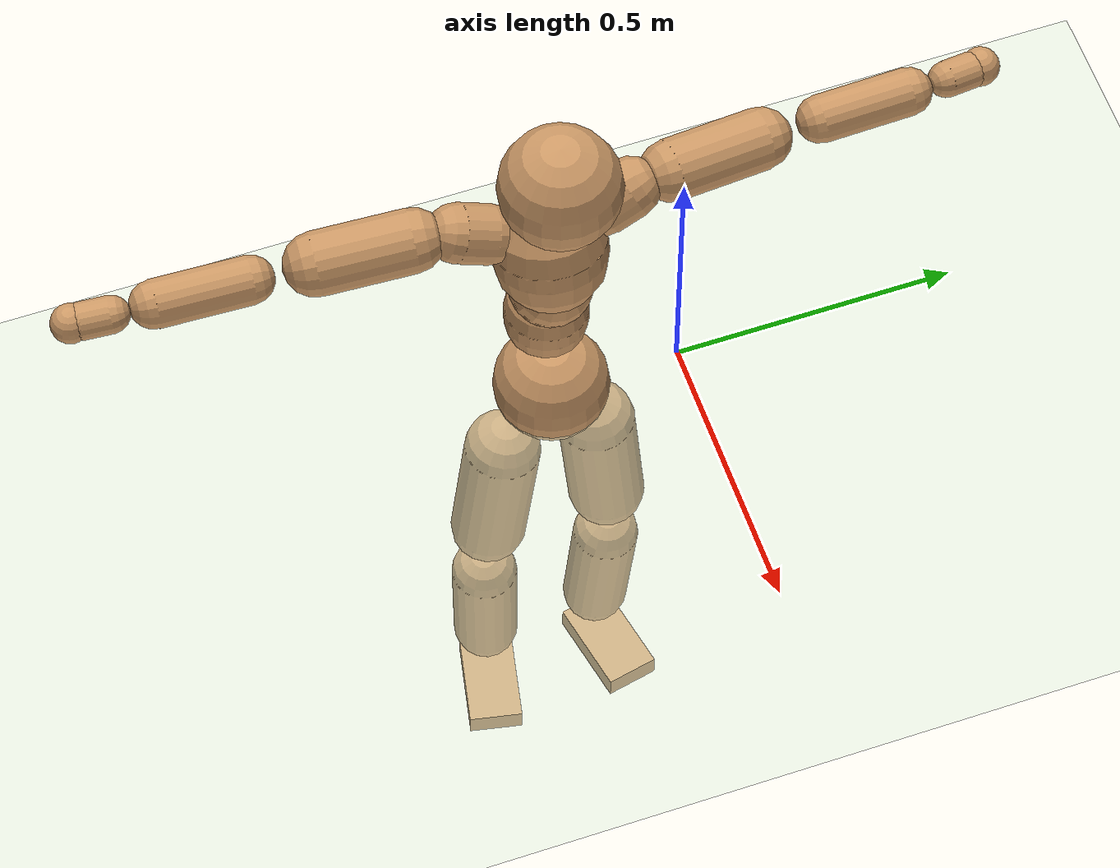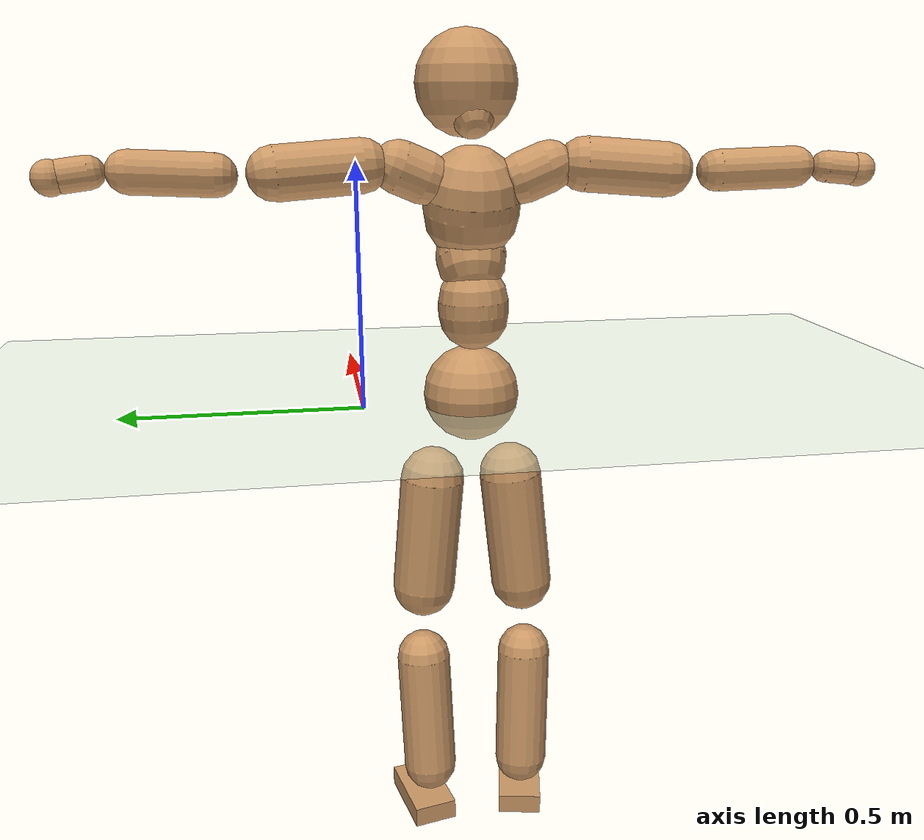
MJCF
<mujoco model="humanoid">
  <compiler coordinate="local" angle="radian"/>
  <default>
    <joint damping="0.0" armature="0.01" stiffness="0.0" limited="true"/>
    <geom conaffinity="1" condim="3" contype="7" margin="0.001" rgba="0.8 0.6 .4 1"/>
  </default>
  <asset>
    <texture type="skybox" builtin="gradient" rgb1=".4 .5 .6" rgb2="0 0 0" width="100" height="100"/>
    <texture builtin="flat" height="1278" mark="cross" markrgb="1 1 1" name="texgeom" random="0.01" rgb1="0.8 0.6 0.4" rgb2="0.8 0.6 0.4" type="cube" width="127"/>
    <texture builtin="checker" height="100" name="texplane" rgb1="0 0 0" rgb2="0.8 0.8 0.8" type="2d" width="100"/>
    <material name="MatPlane" reflectance="0.5" shininess="1" specular="1" texrepeat="60 60" texture="texplane"/>
    <material name="geom" texture="texgeom" texuniform="true"/>
  </asset>
  <worldbody>
    <light cutoff="100" diffuse="1 1 1" dir="-0 0 -1.3" directional="true" exponent="1" pos="0 0 1.3" specular=".1 .1 .1"/>
    <geom conaffinity="1" condim="3" name="floor" pos="0 0 0" rgba="0.8 0.9 0.8 1" size="100 100 .2" type="plane" material="MatPlane"/>
    <body name="Pelvis" pos="0.0002 -0.228 0.0242">
      <freejoint name="Pelvis"/>
      <geom type="sphere" contype="1" conaffinity="1" density="500" size="0.1010" pos="0.0000 0.0000 0.0000" name="Pelvis"/>
      <body name="L_Hip" pos="-0.0129 0.0796 -0.0996">
        <joint name="L_Hip_x" type="hinge" pos="0 0 0" axis="1 0 0" stiffness="800" damping="80" armature="0.02" range="-180.0000 180.0000"/>
        <joint name="L_Hip_y" type="hinge" pos="0 0 0" axis="0 1 0" stiffness="800" damping="80" armature="0.02" range="-180.0000 180.0000"/>
        <joint name="L_Hip_z" type="hinge" pos="0 0 0" axis="0 0 1" stiffness="800" damping="80" armature="0.02" range="-180.0000 180.0000"/>
        <geom type="capsule" contype="1" conaffinity="1" density="500" fromto="-0.0009 0.0076 -0.0845 -0.0035 0.0305 -0.3379" size="0.0683" name="L_Hip"/>
        <body name="L_Knee" pos="-0.0043 0.0382 -0.4224">
          <joint name="L_Knee_x" type="hinge" pos="0 0 0" axis="1 0 0" stiffness="800" damping="80" armature="0.02" range="-180.0000 180.0000"/>
          <joint name="L_Knee_y" type="hinge" pos="0 0 0" axis="0 1 0" stiffness="800" damping="80" armature="0.02" range="-180.0000 180.0000"/>
          <joint name="L_Knee_z" type="hinge" pos="0 0 0" axis="0 0 1" stiffness="800" damping="80" armature="0.02" range="-180.0000 180.0000"/>
          <geom type="capsule" contype="1" conaffinity="1" density="500" fromto="-0.0104 -0.0025 -0.0889 -0.0415 -0.0102 -0.3556" size="0.059" name="L_Knee"/>
          <body name="L_Ankle" pos="-0.0519 -0.0127 -0.4445">
            <joint name="L_Ankle_x" type="hinge" pos="0 0 0" axis="1 0 0" stiffness="800" damping="80" armature="0.02" range="-180.0000 180.0000"/>
            <joint name="L_Ankle_y" type="hinge" pos="0 0 0" axis="0 1 0" stiffness="800" damping="80" armature="0.02" range="-180.0000 180.0000"/>
            <joint name="L_Ankle_z" type="hinge" pos="0 0 0" axis="0 0 1" stiffness="800" damping="80" armature="0.02" range="-180.0000 180.0000"/>
            <geom type="box" contype="1" conaffinity="1" density="500" pos="0.0624 0.0130 -0.0309" size="0.0876 0.0482 0.0228" quat="0.9948 0.0000 0.0000 0.1021" name="L_Ankle"/>
            <body name="L_Toe" pos="0.1249 0.0259 -0.0618">
              <joint name="L_Toe_x" type="hinge" pos="0 0 0" axis="1 0 0" stiffness="500" damping="50" armature="0.02" range="-180.0000 180.0000"/>
              <joint name="L_Toe_y" type="hinge" pos="0 0 0" axis="0 1 0" stiffness="500" damping="50" armature="0.02" range="-180.0000 180.0000"/>
              <joint name="L_Toe_z" type="hinge" pos="0 0 0" axis="0 0 1" stiffness="500" damping="50" armature="0.02" range="-180.0000 180.0000"/>
              <geom type="box" contype="1" conaffinity="1" density="500" pos="0.0000 0.0000 0.0314" size="0.0009 0.0024 0.0012" quat="0.9941 0.0000 0.0000 0.1080" name="L_Toe"/>
            </body>
          </body>
        </body>
      </body>
      <body name="R_Hip" pos="-0.0087 -0.0762 -0.0983">
        <joint name="R_Hip_x" type="hinge" pos="0 0 0" axis="1 0 0" stiffness="800" damping="80" armature="0.02" range="-180.0000 180.0000"/>
        <joint name="R_Hip_y" type="hinge" pos="0 0 0" axis="0 1 0" stiffness="800" damping="80" armature="0.02" range="-180.0000 180.0000"/>
        <joint name="R_Hip_z" type="hinge" pos="0 0 0" axis="0 0 1" stiffness="800" damping="80" armature="0.02" range="-180.0000 180.0000"/>
        <geom type="capsule" contype="1" conaffinity="1" density="500" fromto="-0.0016 -0.0091 -0.0862 -0.0064 -0.0365 -0.3447" size="0.0673" name="R_Hip"/>
        <body name="R_Knee" pos="-0.008 -0.0456 -0.4309">
          <joint name="R_Knee_x" type="hinge" pos="0 0 0" axis="1 0 0" stiffness="800" damping="80" armature="0.02" range="-180.0000 180.0000"/>
          <joint name="R_Knee_y" type="hinge" pos="0 0 0" axis="0 1 0" stiffness="800" damping="80" armature="0.02" range="-180.0000 180.0000"/>
          <joint name="R_Knee_z" type="hinge" pos="0 0 0" axis="0 0 1" stiffness="800" damping="80" armature="0.02" range="-180.0000 180.0000"/>
          <geom type="capsule" contype="1" conaffinity="1" density="500" fromto="-0.0099 0.0033 -0.0890 -0.0395 0.0131 -0.3558" size="0.0591" name="R_Knee"/>
          <body name="R_Ankle" pos="-0.0494 0.0163 -0.4448">
            <joint name="R_Ankle_x" type="hinge" pos="0 0 0" axis="1 0 0" stiffness="800" damping="80" armature="0.02" range="-180.0000 180.0000"/>
            <joint name="R_Ankle_y" type="hinge" pos="0 0 0" axis="0 1 0" stiffness="800" damping="80" armature="0.02" range="-180.0000 180.0000"/>
            <joint name="R_Ankle_z" type="hinge" pos="0 0 0" axis="0 0 1" stiffness="800" damping="80" armature="0.02" range="-180.0000 180.0000"/>
            <geom type="box" contype="1" conaffinity="1" density="500" pos="0.0644 -0.0135 -0.0269" size="0.0895 0.0488 0.0225" quat="0.9947 0.0000 0.0000 -0.1027" name="R_Ankle"/>
            <body name="R_Toe" pos="0.1289 -0.0269 -0.0539">
              <joint name="R_Toe_x" type="hinge" pos="0 0 0" axis="1 0 0" stiffness="500" damping="50" armature="0.02" range="-180.0000 180.0000"/>
              <joint name="R_Toe_y" type="hinge" pos="0 0 0" axis="0 1 0" stiffness="500" damping="50" armature="0.02" range="-180.0000 180.0000"/>
              <joint name="R_Toe_z" type="hinge" pos="0 0 0" axis="0 0 1" stiffness="500" damping="50" armature="0.02" range="-180.0000 180.0000"/>
              <geom type="box" contype="1" conaffinity="1" density="500" pos="0.0000 0.0000 0.0295" size="0.0009 0.0024 0.0013" quat="0.9956 0.0000 0.0000 -0.0939" name="R_Toe"/>
            </body>
          </body>
        </body>
      </body>
      <body name="Torso" pos="-0.0224 -0.0032 0.1145">
        <joint name="Torso_x" type="hinge" pos="0 0 0" axis="1 0 0" stiffness="1000" damping="100" armature="0.02" range="-180.0000 180.0000"/>
        <joint name="Torso_y" type="hinge" pos="0 0 0" axis="0 1 0" stiffness="1000" damping="100" armature="0.02" range="-180.0000 180.0000"/>
        <joint name="Torso_z" type="hinge" pos="0 0 0" axis="0 0 1" stiffness="1000" damping="100" armature="0.02" range="-180.0000 180.0000"/>
        <geom type="capsule" contype="1" conaffinity="1" density="500" fromto="-0.0018 0.0027 0.0872 -0.0012 0.0018 0.0582" size="0.0723" name="Torso"/>
        <body name="Spine" pos="-0.003 0.0044 0.1454">
          <joint name="Spine_x" type="hinge" pos="0 0 0" axis="1 0 0" stiffness="1000" damping="100" armature="0.02" range="-180.0000 180.0000"/>
          <joint name="Spine_y" type="hinge" pos="0 0 0" axis="0 1 0" stiffness="1000" damping="100" armature="0.02" range="-180.0000 180.0000"/>
          <joint name="Spine_z" type="hinge" pos="0 0 0" axis="0 0 1" stiffness="1000" damping="100" armature="0.02" range="-180.0000 180.0000"/>
          <geom type="capsule" contype="1" conaffinity="1" density="500" fromto="0.0190 0.0004 0.0327 0.0126 0.0003 0.0218" size="0.0719" name="Spine"/>
          <body name="Chest" pos="0.0316 0.0007 0.0545">
            <joint name="Chest_x" type="hinge" pos="0 0 0" axis="1 0 0" stiffness="1000" damping="100" armature="0.02" range="-180.0000 180.0000"/>
            <joint name="Chest_y" type="hinge" pos="0 0 0" axis="0 1 0" stiffness="1000" damping="100" armature="0.02" range="-180.0000 180.0000"/>
            <joint name="Chest_z" type="hinge" pos="0 0 0" axis="0 0 1" stiffness="1000" damping="100" armature="0.02" range="-180.0000 180.0000"/>
            <geom type="capsule" contype="1" conaffinity="1" density="500" fromto="-0.0233 -0.0009 0.0941 -0.0155 -0.0006 0.0627" size="0.0973" name="Chest"/>
            <body name="Neck" pos="-0.0397 -0.0029 0.2274">
              <joint name="Neck_x" type="hinge" pos="0 0 0" axis="1 0 0" stiffness="500" damping="50" armature="0.02" range="-180.0000 180.0000"/>
              <joint name="Neck_y" type="hinge" pos="0 0 0" axis="0 1 0" stiffness="500" damping="50" armature="0.02" range="-180.0000 180.0000"/>
              <joint name="Neck_z" type="hinge" pos="0 0 0" axis="0 0 1" stiffness="500" damping="50" armature="0.02" range="-180.0000 180.0000"/>
              <geom type="capsule" contype="1" conaffinity="1" density="500" fromto="0.0122 0.0011 0.0156 0.0490 0.0045 0.0623" size="0.0423" name="Neck"/>
              <body name="Head" pos="0.0612 0.0056 0.0778">
                <joint name="Head_x" type="hinge" pos="0 0 0" axis="1 0 0" stiffness="500" damping="50" armature="0.02" range="-180.0000 180.0000"/>
                <joint name="Head_y" type="hinge" pos="0 0 0" axis="0 1 0" stiffness="500" damping="50" armature="0.02" range="-180.0000 180.0000"/>
                <joint name="Head_z" type="hinge" pos="0 0 0" axis="0 0 1" stiffness="500" damping="50" armature="0.02" range="-180.0000 180.0000"/>
                <geom type="sphere" contype="1" conaffinity="1" density="500" size="0.1028" pos="0.0000 0.0000 0.0000" name="Head"/>
              </body>
            </body>
            <body name="L_Thorax" pos="-0.0349 0.0775 0.1227">
              <joint name="L_Thorax_x" type="hinge" pos="0 0 0" axis="1 0 0" stiffness="500" damping="50" armature="0.02" range="-180.0000 180.0000"/>
              <joint name="L_Thorax_y" type="hinge" pos="0 0 0" axis="0 1 0" stiffness="500" damping="50" armature="0.02" range="-180.0000 180.0000"/>
              <joint name="L_Thorax_z" type="hinge" pos="0 0 0" axis="0 0 1" stiffness="500" damping="50" armature="0.02" range="-180.0000 180.0000"/>
              <geom type="capsule" contype="1" conaffinity="1" density="500" fromto="-0.0015 0.0170 0.0072 -0.0061 0.0679 0.0287" size="0.052" name="L_Thorax"/>
              <body name="L_Shoulder" pos="-0.0077 0.0849 0.0359">
                <joint name="L_Shoulder_x" type="hinge" pos="0 0 0" axis="1 0 0" stiffness="500" damping="50" armature="0.02" range="-720.0000 720.0000"/>
                <joint name="L_Shoulder_y" type="hinge" pos="0 0 0" axis="0 1 0" stiffness="500" damping="50" armature="0.02" range="-720.0000 720.0000"/>
                <joint name="L_Shoulder_z" type="hinge" pos="0 0 0" axis="0 0 1" stiffness="500" damping="50" armature="0.02" range="-720.0000 720.0000"/>
                <geom type="capsule" contype="1" conaffinity="1" density="500" fromto="-0.0062 0.0548 -0.0038 -0.0249 0.2192 -0.0154" size="0.0527" name="L_Shoulder"/>
                <body name="L_Elbow" pos="-0.0312 0.274 -0.0192">
                  <joint name="L_Elbow_x" type="hinge" pos="0 0 0" axis="1 0 0" stiffness="500" damping="50" armature="0.02" range="-720.0000 720.0000"/>
                  <joint name="L_Elbow_y" type="hinge" pos="0 0 0" axis="0 1 0" stiffness="500" damping="50" armature="0.02" range="-720.0000 720.0000"/>
                  <joint name="L_Elbow_z" type="hinge" pos="0 0 0" axis="0 0 1" stiffness="500" damping="50" armature="0.02" range="-720.0000 720.0000"/>
                  <geom type="capsule" contype="1" conaffinity="1" density="500" fromto="0.0001 0.0517 0.0023 0.0003 0.2067 0.0093" size="0.0407" name="L_Elbow"/>
                  <body name="L_Wrist" pos="0.0003 0.2584 0.0116">
                    <joint name="L_Wrist_x" type="hinge" pos="0 0 0" axis="1 0 0" stiffness="300" damping="30" armature="0.02" range="-180.0000 180.0000"/>
                    <joint name="L_Wrist_y" type="hinge" pos="0 0 0" axis="0 1 0" stiffness="300" damping="30" armature="0.02" range="-180.0000 180.0000"/>
                    <joint name="L_Wrist_z" type="hinge" pos="0 0 0" axis="0 0 1" stiffness="300" damping="30" armature="0.02" range="-180.0000 180.0000"/>
                    <geom type="capsule" contype="1" conaffinity="1" density="500" fromto="-0.0027 0.0164 -0.0020 -0.0109 0.0655 -0.0082" size="0.0309" name="L_Wrist"/>
                    <body name="L_Hand" pos="-0.0137 0.0819 -0.0102">
                      <joint name="L_Hand_x" type="hinge" pos="0 0 0" axis="1 0 0" stiffness="300" damping="30" armature="0.02" range="-180.0000 180.0000"/>
                      <joint name="L_Hand_y" type="hinge" pos="0 0 0" axis="0 1 0" stiffness="300" damping="30" armature="0.02" range="-180.0000 180.0000"/>
                      <joint name="L_Hand_z" type="hinge" pos="0 0 0" axis="0 0 1" stiffness="300" damping="30" armature="0.02" range="-180.0000 180.0000"/>
                      <geom type="sphere" contype="1" conaffinity="1" density="500" size="0.0330" pos="0.0000 0.0000 0.0000" name="L_Hand"/>
                    </body>
                  </body>
                </body>
              </body>
            </body>
            <body name="R_Thorax" pos="-0.0417 -0.0792 0.1204">
              <joint name="R_Thorax_x" type="hinge" pos="0 0 0" axis="1 0 0" stiffness="500" damping="50" armature="0.02" range="-180.0000 180.0000"/>
              <joint name="R_Thorax_y" type="hinge" pos="0 0 0" axis="0 1 0" stiffness="500" damping="50" armature="0.02" range="-180.0000 180.0000"/>
              <joint name="R_Thorax_z" type="hinge" pos="0 0 0" axis="0 0 1" stiffness="500" damping="50" armature="0.02" range="-180.0000 180.0000"/>
              <geom type="capsule" contype="1" conaffinity="1" density="500" fromto="-0.0017 -0.0178 0.0076 -0.0067 -0.0712 0.0302" size="0.0507" name="R_Thorax"/>
              <body name="R_Shoulder" pos="-0.0084 -0.089 0.0378">
                <joint name="R_Shoulder_x" type="hinge" pos="0 0 0" axis="1 0 0" stiffness="500" damping="50" armature="0.02" range="-720.0000 720.0000"/>
                <joint name="R_Shoulder_y" type="hinge" pos="0 0 0" axis="0 1 0" stiffness="500" damping="50" armature="0.02" range="-720.0000 720.0000"/>
                <joint name="R_Shoulder_z" type="hinge" pos="0 0 0" axis="0 0 1" stiffness="500" damping="50" armature="0.02" range="-720.0000 720.0000"/>
                <geom type="capsule" contype="1" conaffinity="1" density="500" fromto="-0.0052 -0.0537 -0.0039 -0.0207 -0.2148 -0.0155" size="0.0541" name="R_Shoulder"/>
                <body name="R_Elbow" pos="-0.0259 -0.2685 -0.0193">
                  <joint name="R_Elbow_x" type="hinge" pos="0 0 0" axis="1 0 0" stiffness="500" damping="50" armature="0.02" range="-720.0000 720.0000"/>
                  <joint name="R_Elbow_y" type="hinge" pos="0 0 0" axis="0 1 0" stiffness="500" damping="50" armature="0.02" range="-720.0000 720.0000"/>
                  <joint name="R_Elbow_z" type="hinge" pos="0 0 0" axis="0 0 1" stiffness="500" damping="50" armature="0.02" range="-720.0000 720.0000"/>
                  <geom type="capsule" contype="1" conaffinity="1" density="500" fromto="-0.0009 -0.0535 0.0019 -0.0034 -0.2140 0.0074" size="0.041" name="R_Elbow"/>
                  <body name="R_Wrist" pos="-0.0043 -0.2674 0.0093">
                    <joint name="R_Wrist_x" type="hinge" pos="0 0 0" axis="1 0 0" stiffness="300" damping="30" armature="0.02" range="-180.0000 180.0000"/>
                    <joint name="R_Wrist_y" type="hinge" pos="0 0 0" axis="0 1 0" stiffness="300" damping="30" armature="0.02" range="-180.0000 180.0000"/>
                    <joint name="R_Wrist_z" type="hinge" pos="0 0 0" axis="0 0 1" stiffness="300" damping="30" armature="0.02" range="-180.0000 180.0000"/>
                    <geom type="capsule" contype="1" conaffinity="1" density="500" fromto="-0.0021 -0.0165 -0.0015 -0.0086 -0.0661 -0.0060" size="0.0316" name="R_Wrist"/>
                    <body name="R_Hand" pos="-0.0107 -0.0826 -0.0075">
                      <joint name="R_Hand_x" type="hinge" pos="0 0 0" axis="1 0 0" stiffness="300" damping="30" armature="0.02" range="-180.0000 180.0000"/>
                      <joint name="R_Hand_y" type="hinge" pos="0 0 0" axis="0 1 0" stiffness="300" damping="30" armature="0.02" range="-180.0000 180.0000"/>
                      <joint name="R_Hand_z" type="hinge" pos="0 0 0" axis="0 0 1" stiffness="300" damping="30" armature="0.02" range="-180.0000 180.0000"/>
                      <geom type="sphere" contype="1" conaffinity="1" density="500" size="0.0332" pos="0.0000 0.0000 0.0000" name="R_Hand"/>
                    </body>
                  </body>
                </body>
              </body>
            </body>
          </body>
        </body>
      </body>
    </body>
  </worldbody>
  <actuator>
    <motor name="L_Hip_x" joint="L_Hip_x" gear="500"/>
    <motor name="L_Hip_y" joint="L_Hip_y" gear="500"/>
    <motor name="L_Hip_z" joint="L_Hip_z" gear="500"/>
    <motor name="L_Knee_x" joint="L_Knee_x" gear="500"/>
    <motor name="L_Knee_y" joint="L_Knee_y" gear="500"/>
    <motor name="L_Knee_z" joint="L_Knee_z" gear="500"/>
    <motor name="L_Ankle_x" joint="L_Ankle_x" gear="500"/>
    <motor name="L_Ankle_y" joint="L_Ankle_y" gear="500"/>
    <motor name="L_Ankle_z" joint="L_Ankle_z" gear="500"/>
    <motor name="L_Toe_x" joint="L_Toe_x" gear="500"/>
    <motor name="L_Toe_y" joint="L_Toe_y" gear="500"/>
    <motor name="L_Toe_z" joint="L_Toe_z" gear="500"/>
    <motor name="R_Hip_x" joint="R_Hip_x" gear="500"/>
    <motor name="R_Hip_y" joint="R_Hip_y" gear="500"/>
    <motor name="R_Hip_z" joint="R_Hip_z" gear="500"/>
    <motor name="R_Knee_x" joint="R_Knee_x" gear="500"/>
    <motor name="R_Knee_y" joint="R_Knee_y" gear="500"/>
    <motor name="R_Knee_z" joint="R_Knee_z" gear="500"/>
    <motor name="R_Ankle_x" joint="R_Ankle_x" gear="500"/>
    <motor name="R_Ankle_y" joint="R_Ankle_y" gear="500"/>
    <motor name="R_Ankle_z" joint="R_Ankle_z" gear="500"/>
    <motor name="R_Toe_x" joint="R_Toe_x" gear="500"/>
    <motor name="R_Toe_y" joint="R_Toe_y" gear="500"/>
    <motor name="R_Toe_z" joint="R_Toe_z" gear="500"/>
    <motor name="Torso_x" joint="Torso_x" gear="500"/>
    <motor name="Torso_y" joint="Torso_y" gear="500"/>
    <motor name="Torso_z" joint="Torso_z" gear="500"/>
    <motor name="Spine_x" joint="Spine_x" gear="500"/>
    <motor name="Spine_y" joint="Spine_y" gear="500"/>
    <motor name="Spine_z" joint="Spine_z" gear="500"/>
    <motor name="Chest_x" joint="Chest_x" gear="500"/>
    <motor name="Chest_y" joint="Chest_y" gear="500"/>
    <motor name="Chest_z" joint="Chest_z" gear="500"/>
    <motor name="Neck_x" joint="Neck_x" gear="500"/>
    <motor name="Neck_y" joint="Neck_y" gear="500"/>
    <motor name="Neck_z" joint="Neck_z" gear="500"/>
    <motor name="Head_x" joint="Head_x" gear="500"/>
    <motor name="Head_y" joint="Head_y" gear="500"/>
    <motor name="Head_z" joint="Head_z" gear="500"/>
    <motor name="L_Thorax_x" joint="L_Thorax_x" gear="500"/>
    <motor name="L_Thorax_y" joint="L_Thorax_y" gear="500"/>
    <motor name="L_Thorax_z" joint="L_Thorax_z" gear="500"/>
    <motor name="L_Shoulder_x" joint="L_Shoulder_x" gear="500"/>
    <motor name="L_Shoulder_y" joint="L_Shoulder_y" gear="500"/>
    <motor name="L_Shoulder_z" joint="L_Shoulder_z" gear="500"/>
    <motor name="L_Elbow_x" joint="L_Elbow_x" gear="500"/>
    <motor name="L_Elbow_y" joint="L_Elbow_y" gear="500"/>
    <motor name="L_Elbow_z" joint="L_Elbow_z" gear="500"/>
    <motor name="L_Wrist_x" joint="L_Wrist_x" gear="500"/>
    <motor name="L_Wrist_y" joint="L_Wrist_y" gear="500"/>
    <motor name="L_Wrist_z" joint="L_Wrist_z" gear="500"/>
    <motor name="L_Hand_x" joint="L_Hand_x" gear="500"/>
    <motor name="L_Hand_y" joint="L_Hand_y" gear="500"/>
    <motor name="L_Hand_z" joint="L_Hand_z" gear="500"/>
    <motor name="R_Thorax_x" joint="R_Thorax_x" gear="500"/>
    <motor name="R_Thorax_y" joint="R_Thorax_y" gear="500"/>
    <motor name="R_Thorax_z" joint="R_Thorax_z" gear="500"/>
    <motor name="R_Shoulder_x" joint="R_Shoulder_x" gear="500"/>
    <motor name="R_Shoulder_y" joint="R_Shoulder_y" gear="500"/>
    <motor name="R_Shoulder_z" joint="R_Shoulder_z" gear="500"/>
    <motor name="R_Elbow_x" joint="R_Elbow_x" gear="500"/>
    <motor name="R_Elbow_y" joint="R_Elbow_y" gear="500"/>
    <motor name="R_Elbow_z" joint="R_Elbow_z" gear="500"/>
    <motor name="R_Wrist_x" joint="R_Wrist_x" gear="500"/>
    <motor name="R_Wrist_y" joint="R_Wrist_y" gear="500"/>
    <motor name="R_Wrist_z" joint="R_Wrist_z" gear="500"/>
    <motor name="R_Hand_x" joint="R_Hand_x" gear="500"/>
    <motor name="R_Hand_y" joint="R_Hand_y" gear="500"/>
    <motor name="R_Hand_z" joint="R_Hand_z" gear="500"/>
  </actuator>
  <contact>
    <exclude body1="Torso" body2="Chest"/>
    <exclude body1="Head" body2="Chest"/>
    <exclude body1="R_Knee" body2="R_Toe"/>
    <exclude body1="R_Knee" body2="L_Ankle"/>
    <exclude body1="R_Knee" body2="L_Toe"/>
    <exclude body1="L_Knee" body2="L_Toe"/>
    <exclude body1="L_Knee" body2="R_Ankle"/>
    <exclude body1="L_Knee" body2="R_Toe"/>
    <exclude body1="L_Shoulder" body2="Chest"/>
    <exclude body1="R_Shoulder" body2="Chest"/>
  </contact>
  <sensor/>
  <size njmax="700" nconmax="700"/>
</mujoco>
